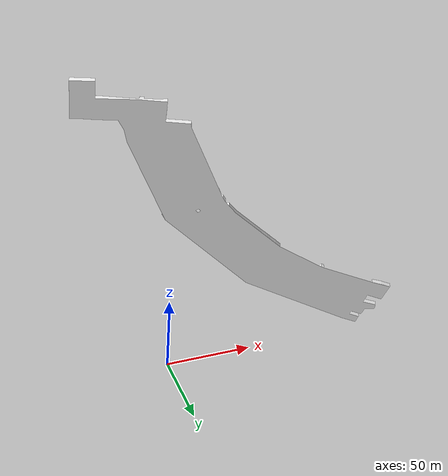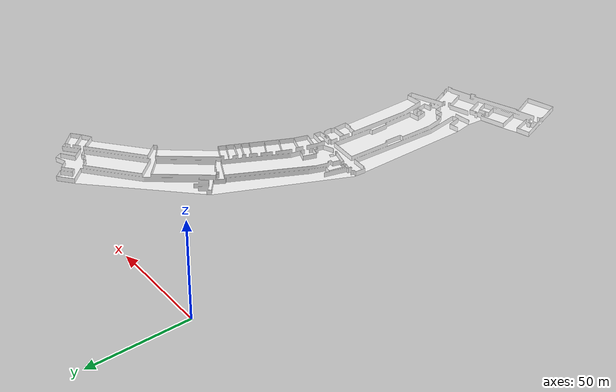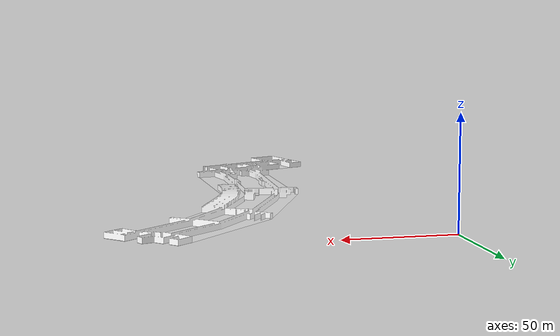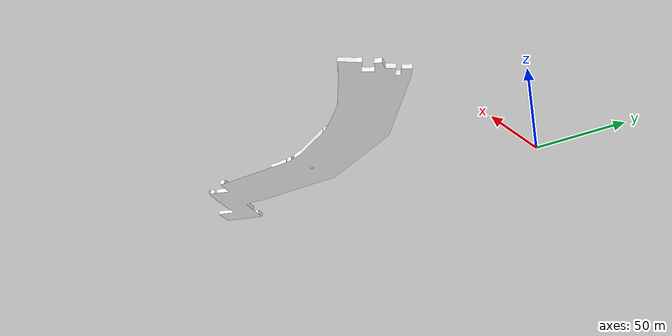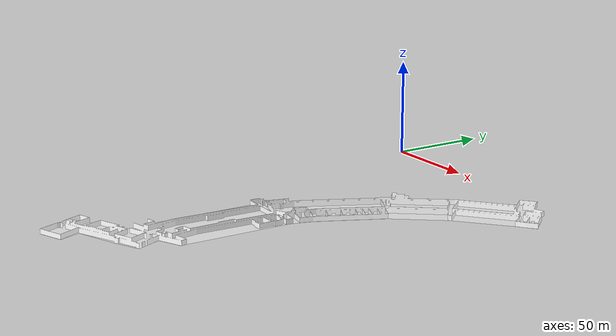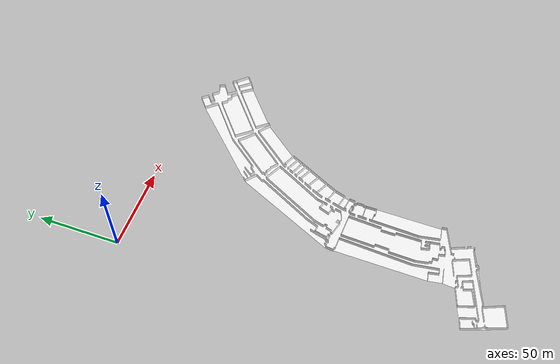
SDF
<?xml version='1.0' encoding='utf-8'?>
<sdf version="1.7">
  <model name="map_elettra_floor1">
    <static>true</static>
    <link name="floor_1">
      <visual name="visual">
        <geometry>
          <mesh>
            <uri>model://map_elettra_floor1/meshes/floor_1.obj</uri>
          </mesh>
        </geometry>
        <material>
          <diffuse>1.0 1.0 1.0</diffuse>
          <specular>0.1 0.1 0.1</specular>
          <pbr>
            <metal>
              <metalness>0.0</metalness>
              <albedo_map>model://map_elettra_floor1/meshes/blue_linoleum.png</albedo_map>
            </metal>
          </pbr>
          <script>
            <uri>model://map_elettra_floor1/meshes/</uri>
            <name>floor_1_Diffuse</name>
          </script>
        </material>
      </visual>
      <collision name="collision">
        <geometry>
          <mesh>
            <uri>model://map_elettra_floor1/meshes/floor_1.obj</uri>
          </mesh>
        </geometry>
        <surface>
          <contact>
            <collide_bitmask>0x01</collide_bitmask>
          </contact>
        </surface>
      </collision>
    </link>
    <link name="wall_1">
      <visual name="wall_1">
        <geometry>
          <mesh>
            <uri>model://map_elettra_floor1/meshes/wall_1.obj</uri>
          </mesh>
        </geometry>
        <transparency>0.0</transparency>
        <material>
          <diffuse>1.0 1.0 1.0</diffuse>
          <specular>0.1 0.1 0.1</specular>
          <pbr>
            <metal>
              <metalness>0.0</metalness>
              <albedo_map>model://map_elettra_floor1/meshes/default.png</albedo_map>
            </metal>
          </pbr>
          <script>
            <uri>model://map_elettra_floor1/meshes/</uri>
            <name>wall_1_Diffuse</name>
          </script>
        </material>
      </visual>
      <collision name="collision">
        <geometry>
          <mesh>
            <uri>model://map_elettra_floor1/meshes/wall_1.obj</uri>
          </mesh>
        </geometry>
        <surface>
          <contact>
            <collide_bitmask>0x01</collide_bitmask>
          </contact>
        </surface>
      </collision>
      <pose>13.743847063020425 -223.20713808548246 0 0 0 0</pose>
    </link>
  </model>
</sdf>
